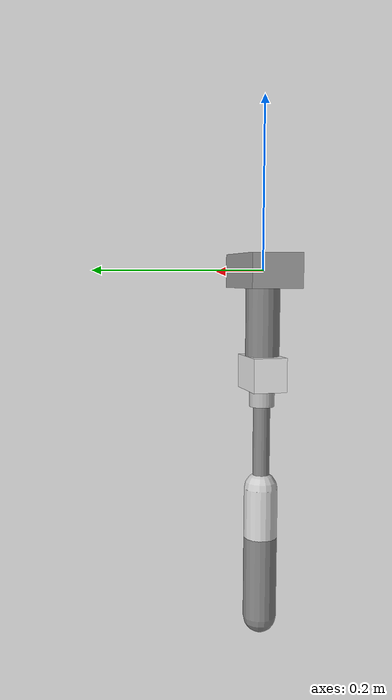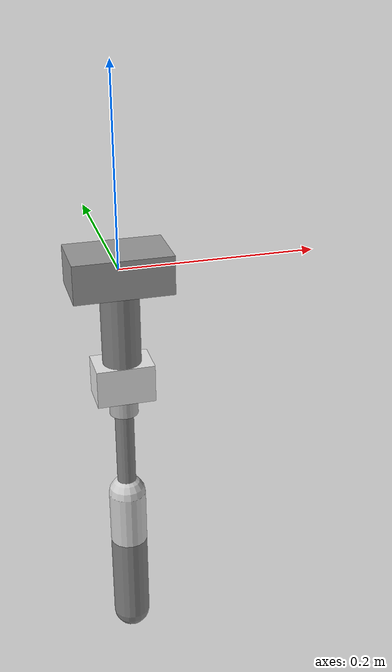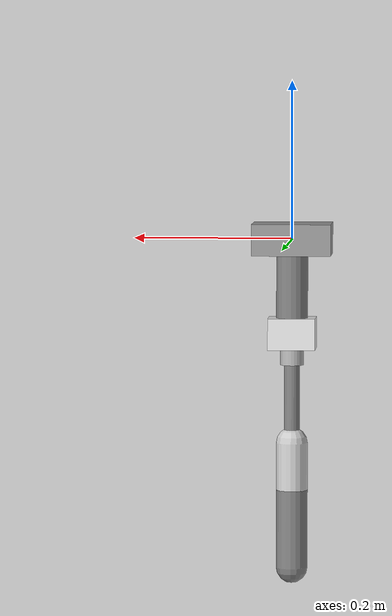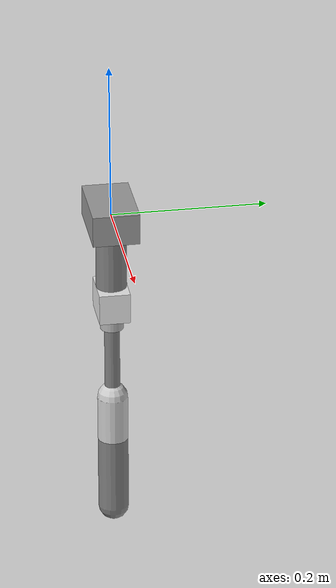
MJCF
<mujoco model="knee_joint">

    <compiler angle="degree" autolimits="true"/>
    <option timestep="0.001" gravity="0 0 -9.81"/>

    <worldbody>

        <!-- Fixed Base -->
        <body name="base" pos="0 0 0">

            <geom type="box"
                  size="0.05 0.03 0.02"
                  rgba="0.6 0.6 0.6 1"/>

            <!-- Upper Link -->
            <body name="link1" pos="0 0 0">

                <joint name="joint1"
                       type="hinge"
                       axis="0 1 0"/>

                <geom type="capsule"
                      fromto="0 0 0 0 0 -0.12"
                      size="0.02"/>

                <!-- Shaft -->
                <body name="shaft" pos="0 0 -0.12">

                    <joint name="joint2"
                           type="hinge"
                           axis="0 1 0"/>

                    <geom type="cylinder"
                          size="0.015 0.04"
                          rgba="0.7 0.7 0.7 1"/>

                    <!-- Slider -->
                    <body name="coupler" pos="0 0 0">

                        <joint name="joint3"
                               type="slide"
                               axis="0 0 1"
                               range="-0.02 0.02"/>

                        <geom type="box"
                              size="0.03 0.02 0.02"
                              rgba="0.9 0.9 0.9 1"/>

                        <!-- Connecting rod -->
                        <body name="rod" pos="0 0 -0.02">

                            <joint name="joint4"
                                   type="hinge"
                                   axis="0 1 0"/>

                            <geom type="capsule"
                                  fromto="0 0 0 0 0 -0.12"
                                  size="0.01"/>

                            <!-- Knee crank -->
                            <body name="crank" pos="0 0 -0.12">

                                <joint name="joint5"
                                       type="hinge"
                                       axis="0 1 0"/>

                                <geom type="capsule"
                                      fromto="0 0 0 0 0 -0.06"
                                      size="0.02"
                                      rgba="0.8 0.8 0.8 1"/>

                                <!-- Lower leg -->
                                <body name="shank" pos="0 0 -0.06">

                                    <joint name="joint6"
                                           type="hinge"
                                           axis="0 1 0"/>

                                    <geom type="capsule"
                                          fromto="0 0 0 0 0 -0.10"
                                          size="0.02"/>

                                </body>

                            </body>

                        </body>

                    </body>

                </body>

            </body>

        </body>

    </worldbody>

    <actuator>

        <motor joint="joint5"
               gear="30"
               ctrlrange="-1 1"/>

    </actuator>

</mujoco>
